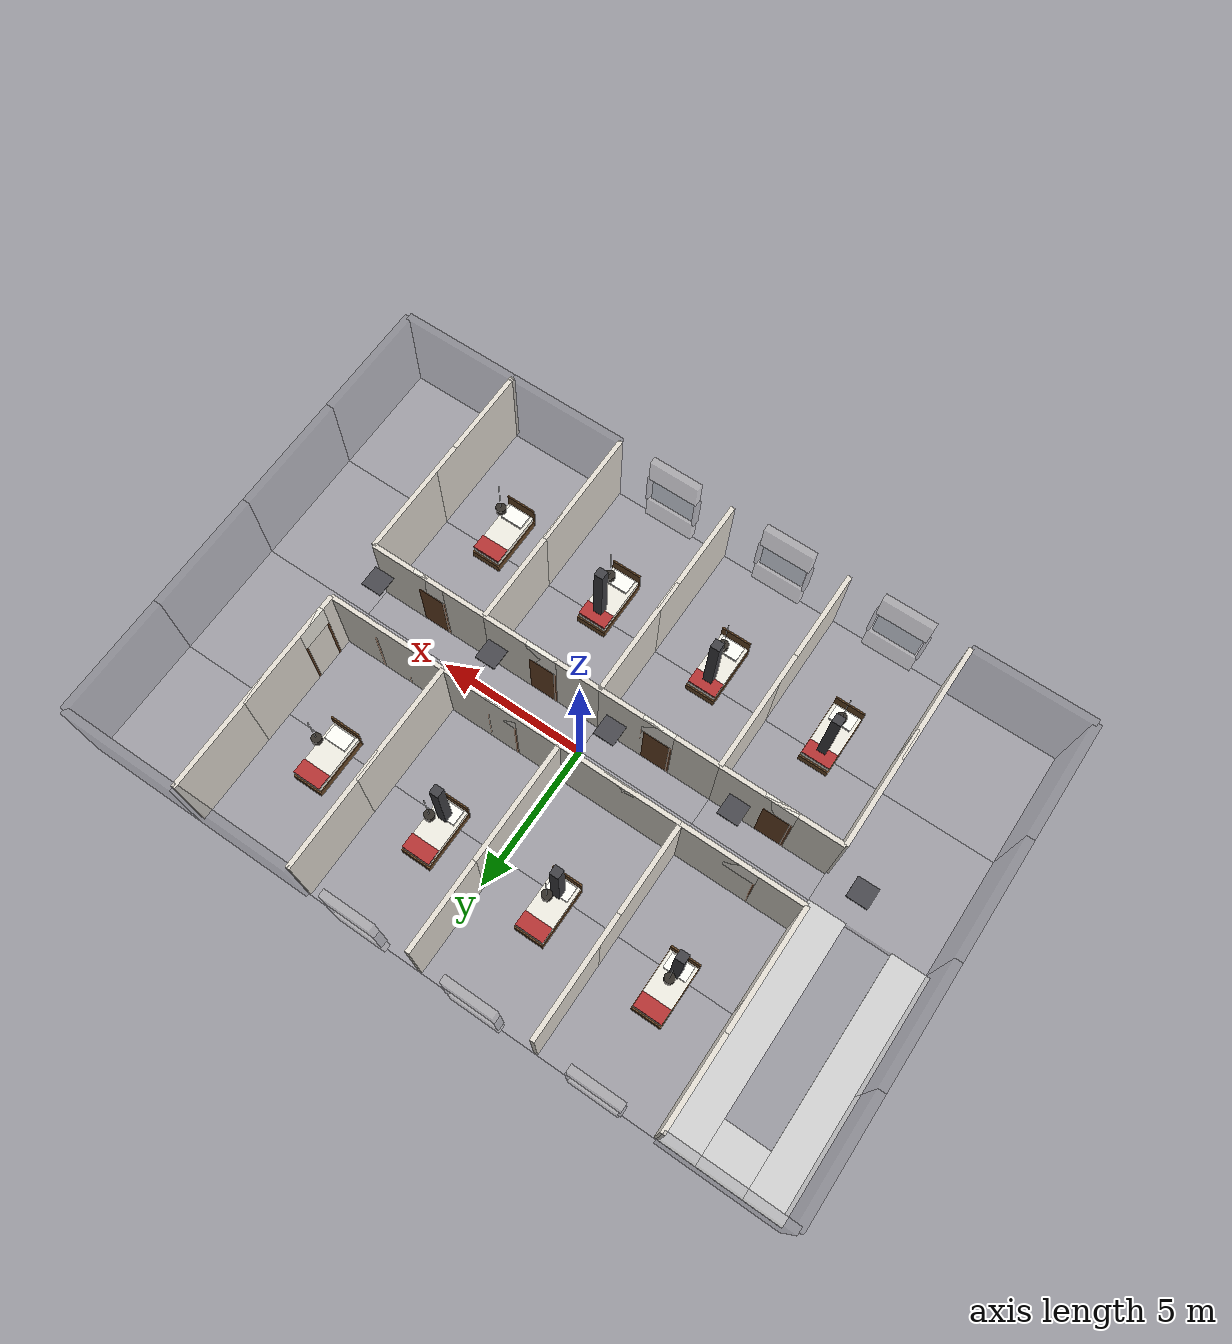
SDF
<?xml version="1.0" ?>
<sdf version="1.6">
  <model name="first_floor">
    <static>true</static>

    <!-- Floor Slabs (grid excluding stair and lift openings) -->
    <!-- Row 1 (y = -6) -->
    <include><name>f1_floor_slab_0_0</name><uri>model://_components/floor_slab_transparent</uri><pose>-10 -6 0 0 0 0</pose></include>
    <include><name>f1_floor_slab_1_0</name><uri>model://_components/floor_slab_transparent</uri><pose>-6 -6 0 0 0 0</pose></include>
    <include><name>f1_floor_slab_2_0</name><uri>model://_components/floor_slab_transparent</uri><pose>-2 -6 0 0 0 0</pose></include>
    <include><name>f1_floor_slab_3_0</name><uri>model://_components/floor_slab_transparent</uri><pose>2 -6 0 0 0 0</pose></include>
    <include><name>f1_floor_slab_4_0</name><uri>model://_components/floor_slab_transparent</uri><pose>6 -6 0 0 0 0</pose></include>
    <include><name>f1_floor_slab_5_0</name><uri>model://_components/floor_slab_transparent</uri><pose>10 -6 0 0 0 0</pose></include>

    <!-- Row 2 (y = -2) -->
    <include><name>f1_floor_slab_0_1</name><uri>model://_components/floor_slab_transparent</uri><pose>-10 -2 0 0 0 0</pose></include>
    <include><name>f1_floor_slab_1_1</name><uri>model://_components/floor_slab_transparent</uri><pose>-6 -2 0 0 0 0</pose></include>
    <include><name>f1_floor_slab_2_1</name><uri>model://_components/floor_slab_transparent</uri><pose>-2 -2 0 0 0 0</pose></include>
    <include><name>f1_floor_slab_3_1</name><uri>model://_components/floor_slab_transparent</uri><pose>2 -2 0 0 0 0</pose></include>
    <include><name>f1_floor_slab_4_1</name><uri>model://_components/floor_slab_transparent</uri><pose>6 -2 0 0 0 0</pose></include>
    <include><name>f1_floor_slab_5_1</name><uri>model://_components/floor_slab_transparent</uri><pose>10 -2 0 0 0 0</pose></include>

    <!-- Row 3 (y = 2) - Omit x = -10 (stair opening) -->
    <include><name>f1_floor_slab_1_2</name><uri>model://_components/floor_slab_transparent</uri><pose>-6 2 0 0 0 0</pose></include>
    <include><name>f1_floor_slab_2_2</name><uri>model://_components/floor_slab_transparent</uri><pose>-2 2 0 0 0 0</pose></include>
    <include><name>f1_floor_slab_3_2</name><uri>model://_components/floor_slab_transparent</uri><pose>2 2 0 0 0 0</pose></include>
    <include><name>f1_floor_slab_4_2</name><uri>model://_components/floor_slab_transparent</uri><pose>6 2 0 0 0 0</pose></include>
    <include><name>f1_floor_slab_5_2</name><uri>model://_components/floor_slab_transparent</uri><pose>10 2 0 0 0 0</pose></include>

    <!-- Row 4 (y = 6) - Omit x = -10 (lift opening) -->
    <include><name>f1_floor_slab_1_3</name><uri>model://_components/floor_slab_transparent</uri><pose>-6 6 0 0 0 0</pose></include>
    <include><name>f1_floor_slab_2_3</name><uri>model://_components/floor_slab_transparent</uri><pose>-2 6 0 0 0 0</pose></include>
    <include><name>f1_floor_slab_3_3</name><uri>model://_components/floor_slab_transparent</uri><pose>2 6 0 0 0 0</pose></include>
    <include><name>f1_floor_slab_4_3</name><uri>model://_components/floor_slab_transparent</uri><pose>6 6 0 0 0 0</pose></include>
    <include><name>f1_floor_slab_5_3</name><uri>model://_components/floor_slab_transparent</uri><pose>10 6 0 0 0 0</pose></include>

    <!-- Walking areas around the stair/lift openings -->
    <link name="floor_fillers">
      <pose>0 0 0 0 0 0</pose>
      <!-- Left walking strip (x = -12 to -10.75, y = 0 to 8) -->
      <collision name="strip_l_collision">
        <pose>-11.375 4.0 0.025 0 0 0</pose>
        <geometry><box><size>1.25 8.0 0.05</size></box></geometry>
      </collision>
      <visual name="strip_l_visual">
        <pose>-11.375 4.0 0.025 0 0 0</pose>
        <geometry><box><size>1.25 8.0 0.05</size></box></geometry>
        <material><ambient>0.8 0.8 0.8 1</ambient><diffuse>0.8 0.8 0.8 1</diffuse></material>
      </visual>
      <!-- Right walking strip (x = -9.25 to -8.0, y = 0 to 8) -->
      <collision name="strip_r_collision">
        <pose>-8.625 4.0 0.025 0 0 0</pose>
        <geometry><box><size>1.25 8.0 0.05</size></box></geometry>
      </collision>
      <visual name="strip_r_visual">
        <pose>-8.625 4.0 0.025 0 0 0</pose>
        <geometry><box><size>1.25 8.0 0.05</size></box></geometry>
        <material><ambient>0.8 0.8 0.8 1</ambient><diffuse>0.8 0.8 0.8 1</diffuse></material>
      </visual>
      <!-- North walking strip (above lift shaft, y = 6.5 to 8.0, x = -11.0 to -9.0) -->
      <collision name="strip_n_collision">
        <pose>-10.0 7.25 0.025 0 0 0</pose>
        <geometry><box><size>1.5 1.5 0.05</size></box></geometry>
      </collision>
      <visual name="strip_n_visual">
        <pose>-10.0 7.25 0.025 0 0 0</pose>
        <geometry><box><size>1.5 1.5 0.05</size></box></geometry>
        <material><ambient>0.8 0.8 0.8 1</ambient><diffuse>0.8 0.8 0.8 1</diffuse></material>
      </visual>
    </link>

    <!-- Exterior Walls (First Floor) -->
    <!-- South Facade (y = -8) -->
    <include><name>f1_ext_wall_s0</name><uri>model://_components/wall_exterior</uri><pose>-10 -8 0 0 0 0</pose></include>
    <include><name>f1_ext_wall_s1</name><uri>model://_components/window_standard</uri><pose>-6 -8 0 0 0 0</pose></include>
    <include><name>f1_ext_wall_s2</name><uri>model://_components/window_standard</uri><pose>-2 -8 0 0 0 0</pose></include>
    <include><name>f1_ext_wall_s3</name><uri>model://_components/window_standard</uri><pose>2 -8 0 0 0 0</pose></include>
    <include><name>f1_ext_wall_s4</name><uri>model://_components/wall_exterior</uri><pose>6 -8 0 0 0 0</pose></include>
    <include><name>f1_ext_wall_s5</name><uri>model://_components/wall_exterior</uri><pose>10 -8 0 0 0 0</pose></include>

    <!-- North Facade (y = 8) -->
    <include><name>f1_ext_wall_n0</name><uri>model://_components/wall_exterior</uri><pose>-10 8 0 0 0 3.14159</pose></include>
    <include><name>f1_ext_wall_n1</name><uri>model://_components/window_standard</uri><pose>-6 8 0 0 0 3.14159</pose></include>
    <include><name>f1_ext_wall_n2</name><uri>model://_components/window_standard</uri><pose>-2 8 0 0 0 3.14159</pose></include>
    <include><name>f1_ext_wall_n3</name><uri>model://_components/window_standard</uri><pose>2 8 0 0 0 3.14159</pose></include>
    <include><name>f1_ext_wall_n4</name><uri>model://_components/wall_exterior</uri><pose>6 8 0 0 0 3.14159</pose></include>
    <include><name>f1_ext_wall_n5</name><uri>model://_components/wall_exterior</uri><pose>10 8 0 0 0 3.14159</pose></include>

    <!-- West Facade (x = -12) -->
    <include><name>f1_ext_wall_w0</name><uri>model://_components/wall_exterior</uri><pose>-12 -6 0 0 0 1.5708</pose></include>
    <include><name>f1_ext_wall_w1</name><uri>model://_components/wall_exterior</uri><pose>-12 -2 0 0 0 1.5708</pose></include>
    <include><name>f1_ext_wall_w2</name><uri>model://_components/wall_exterior</uri><pose>-12 2 0 0 0 1.5708</pose></include>
    <include><name>f1_ext_wall_w3</name><uri>model://_components/wall_exterior</uri><pose>-12 6 0 0 0 1.5708</pose></include>

    <!-- East Facade (x = 12) -->
    <include><name>f1_ext_wall_e0</name><uri>model://_components/wall_exterior</uri><pose>12 -6 0 0 0 1.5708</pose></include>
    <include><name>f1_ext_wall_e1</name><uri>model://_components/wall_exterior</uri><pose>12 -2 0 0 0 1.5708</pose></include>
    <include><name>f1_ext_wall_e2</name><uri>model://_components/wall_exterior</uri><pose>12 2 0 0 0 1.5708</pose></include>
    <include><name>f1_ext_wall_e3</name><uri>model://_components/wall_exterior</uri><pose>12 6 0 0 0 1.5708</pose></include>

    <!-- Pillars / Columns -->
    <include><name>f1_column_0</name><uri>model://_components/column</uri><pose>-6 -4 0 0 0 0</pose></include>
    <include><name>f1_column_1</name><uri>model://_components/column</uri><pose>-2 -4 0 0 0 0</pose></include>
    <include><name>f1_column_2</name><uri>model://_components/column</uri><pose>2 -4 0 0 0 0</pose></include>
    <include><name>f1_column_3</name><uri>model://_components/column</uri><pose>-6 4 0 0 0 0</pose></include>
    <include><name>f1_column_4</name><uri>model://_components/column</uri><pose>-2 4 0 0 0 0</pose></include>
    <include><name>f1_column_5</name><uri>model://_components/column</uri><pose>2 4 0 0 0 0</pose></include>

    <!-- Cabin Corridor Partition Walls (along y = 1.0m and y = -1.0m) -->
    <!-- North partitions (y = 1.0) -->
    <include><name>corridor_n_wall_1</name><uri>model://_components/wall_segment_4m</uri><pose>-6 1.0 0 0 0 0</pose></include>
    <include><name>corridor_n_wall_2</name><uri>model://_components/wall_segment_4m</uri><pose>-2 1.0 0 0 0 0</pose></include>
    <include><name>corridor_n_wall_3</name><uri>model://_components/wall_segment_4m</uri><pose>2 1.0 0 0 0 0</pose></include>
    <include><name>corridor_n_wall_4</name><uri>model://_components/wall_segment_4m</uri><pose>6 1.0 0 0 0 0</pose></include>

    <!-- South partitions (y = -1.0) -->
    <include><name>corridor_s_wall_1</name><uri>model://_components/wall_segment_4m</uri><pose>-6 -1.0 0 0 0 0</pose></include>
    <include><name>corridor_s_wall_2</name><uri>model://_components/wall_segment_4m</uri><pose>-2 -1.0 0 0 0 0</pose></include>
    <include><name>corridor_s_wall_3</name><uri>model://_components/wall_segment_4m</uri><pose>2 -1.0 0 0 0 0</pose></include>
    <include><name>corridor_s_wall_4</name><uri>model://_components/wall_segment_4m</uri><pose>6 -1.0 0 0 0 0</pose></include>

    <!-- Cabin Entry Doors (pre-opened, leading from corridor into cabins) -->
    <!-- North Cabin Doors -->
    <include><name>cabin_door_1</name><uri>model://_components/door_single</uri><pose>-6 1.0 0 0 0 0</pose></include>
    <include><name>cabin_door_2</name><uri>model://_components/door_single</uri><pose>-2 1.0 0 0 0 0</pose></include>
    <include><name>cabin_door_3</name><uri>model://_components/door_single</uri><pose>2 1.0 0 0 0 0</pose></include>
    <include><name>cabin_door_4</name><uri>model://_components/door_single</uri><pose>6 1.0 0 0 0 0</pose></include>
    <!-- South Cabin Doors -->
    <include><name>cabin_door_5</name><uri>model://_components/door_single</uri><pose>-6 -1.0 0 0 0 3.14159</pose></include>
    <include><name>cabin_door_6</name><uri>model://_components/door_single</uri><pose>-2 -1.0 0 0 0 3.14159</pose></include>
    <include><name>cabin_door_7</name><uri>model://_components/door_single</uri><pose>2 -1.0 0 0 0 3.14159</pose></include>
    <include><name>cabin_door_8</name><uri>model://_components/door_single</uri><pose>6 -1.0 0 0 0 3.14159</pose></include>

    <!-- Cabin Division Walls (North-South partition walls) -->
    <!-- North Division Walls (y = 1.0 to 8.0) -->
    <include><name>div_wall_n0_a</name><uri>model://_components/wall_segment_4m</uri><pose>-8 3.0 0 0 0 1.5708</pose></include>
    <include><name>div_wall_n0_b</name><uri>model://_components/wall_segment_4m</uri><pose>-8 6.0 0 0 0 1.5708</pose></include>

    <include><name>div_wall_n1_a</name><uri>model://_components/wall_segment_4m</uri><pose>-4 3.0 0 0 0 1.5708</pose></include>
    <include><name>div_wall_n1_b</name><uri>model://_components/wall_segment_4m</uri><pose>-4 6.0 0 0 0 1.5708</pose></include>

    <include><name>div_wall_n2_a</name><uri>model://_components/wall_segment_4m</uri><pose>0 3.0 0 0 0 1.5708</pose></include>
    <include><name>div_wall_n2_b</name><uri>model://_components/wall_segment_4m</uri><pose>0 6.0 0 0 0 1.5708</pose></include>

    <include><name>div_wall_n3_a</name><uri>model://_components/wall_segment_4m</uri><pose>4 3.0 0 0 0 1.5708</pose></include>
    <include><name>div_wall_n3_b</name><uri>model://_components/wall_segment_4m</uri><pose>4 6.0 0 0 0 1.5708</pose></include>

    <include><name>div_wall_n4_a</name><uri>model://_components/wall_segment_4m</uri><pose>8 3.0 0 0 0 1.5708</pose></include>
    <include><name>div_wall_n4_b</name><uri>model://_components/wall_segment_4m</uri><pose>8 6.0 0 0 0 1.5708</pose></include>

    <!-- South Division Walls (y = -8.0 to -1.0) -->
    <include><name>div_wall_s0_a</name><uri>model://_components/wall_segment_4m</uri><pose>-8 -3.0 0 0 0 1.5708</pose></include>
    <include><name>div_wall_s0_b</name><uri>model://_components/wall_segment_4m</uri><pose>-8 -6.0 0 0 0 1.5708</pose></include>

    <include><name>div_wall_s1_a</name><uri>model://_components/wall_segment_4m</uri><pose>-4 -3.0 0 0 0 1.5708</pose></include>
    <include><name>div_wall_s1_b</name><uri>model://_components/wall_segment_4m</uri><pose>-4 -6.0 0 0 0 1.5708</pose></include>

    <include><name>div_wall_s2_a</name><uri>model://_components/wall_segment_4m</uri><pose>0 -3.0 0 0 0 1.5708</pose></include>
    <include><name>div_wall_s2_b</name><uri>model://_components/wall_segment_4m</uri><pose>0 -6.0 0 0 0 1.5708</pose></include>

    <include><name>div_wall_s3_a</name><uri>model://_components/wall_segment_4m</uri><pose>4 -3.0 0 0 0 1.5708</pose></include>
    <include><name>div_wall_s3_b</name><uri>model://_components/wall_segment_4m</uri><pose>4 -6.0 0 0 0 1.5708</pose></include>

    <include><name>div_wall_s4_a</name><uri>model://_components/wall_segment_4m</uri><pose>8 -3.0 0 0 0 1.5708</pose></include>
    <include><name>div_wall_s4_b</name><uri>model://_components/wall_segment_4m</uri><pose>8 -6.0 0 0 0 1.5708</pose></include>

    <!-- East-most Storage / Utility Room Doors (at x = 8.0) -->
    <include><name>utility_door_n</name><uri>model://_components/door_single</uri><pose>8 2.0 0 0 0 1.5708</pose></include>
    <include><name>utility_door_s</name><uri>model://_components/door_single</uri><pose>8 -2.0 0 0 0 1.5708</pose></include>

    <!-- Cabin Interior Bedroom Layout (converted from dining to bedrooms) -->
    <!-- Cabin 1 (x = -6, y = 4.5) -->
    <include><name>c1_bed</name><uri>model://_furniture/bed_single</uri><pose>-6 4.5 0 0 0 1.5708</pose></include>

    <!-- Cabin 2 (x = -2, y = 4.5) -->
    <include><name>c2_bed</name><uri>model://_furniture/bed_single</uri><pose>-2 4.5 0 0 0 1.5708</pose></include>

    <!-- Cabin 3 (x = 2, y = 4.5) -->
    <include><name>c3_bed</name><uri>model://_furniture/bed_single</uri><pose>2 4.5 0 0 0 1.5708</pose></include>

    <!-- Cabin 4 (x = 6, y = 4.5) -->
    <include><name>c4_bed</name><uri>model://_furniture/bed_single</uri><pose>6 4.5 0 0 0 1.5708</pose></include>
    <!-- Cabin 5 (x = -6, y = -4.5) -->
    <include><name>c5_bed</name><uri>model://_furniture/bed_single</uri><pose>-6 -4.5 0 0 0 1.5708</pose></include>

    <!-- Cabin 6 (x = -2, y = -4.5) -->
    <include><name>c6_bed</name><uri>model://_furniture/bed_single</uri><pose>-2 -4.5 0 0 0 1.5708</pose></include>

    <!-- Cabin 7 (x = 2, y = -4.5) -->
    <include><name>c7_bed</name><uri>model://_furniture/bed_single</uri><pose>2 -4.5 0 0 0 1.5708</pose></include>

    <!-- Cabin 8 (x = 6, y = -4.5) -->
    <include><name>c8_bed</name><uri>model://_furniture/bed_single</uri><pose>6 -4.5 0 0 0 1.5708</pose></include>

    <!-- Plants removed from first floor (were a navigation/visual disturbance) -->

    <!-- Ceiling Lights (First Floor Ceiling at z = 3.4m) -->
    <!-- Corridor Lighting -->
    <include><name>f1_light_corr_1</name><uri>model://_lighting/ceiling_light_panel</uri><pose>-9 0 3.4 0 0 0</pose></include>
    <include><name>f1_light_corr_2</name><uri>model://_lighting/ceiling_light_panel</uri><pose>-5 0 3.4 0 0 0</pose></include>
    <include><name>f1_light_corr_3</name><uri>model://_lighting/ceiling_light_panel</uri><pose>-1 0 3.4 0 0 0</pose></include>
    <include><name>f1_light_corr_4</name><uri>model://_lighting/ceiling_light_panel</uri><pose>3 0 3.4 0 0 0</pose></include>
    <include><name>f1_light_corr_5</name><uri>model://_lighting/ceiling_light_panel</uri><pose>7 0 3.4 0 0 0</pose></include>

    <!-- Cabin Pendant Lights -->
    <include><name>f1_pendant_light_1</name><uri>model://_lighting/pendant_light</uri><pose>-6 4.5 3.4 0 0 0</pose></include>
    <include><name>f1_pendant_light_2</name><uri>model://_lighting/pendant_light</uri><pose>-2 4.5 3.4 0 0 0</pose></include>
    <include><name>f1_pendant_light_3</name><uri>model://_lighting/pendant_light</uri><pose>2 4.5 3.4 0 0 0</pose></include>
    <include><name>f1_pendant_light_4</name><uri>model://_lighting/pendant_light</uri><pose>6 4.5 3.4 0 0 0</pose></include>
    <include><name>f1_pendant_light_5</name><uri>model://_lighting/pendant_light</uri><pose>-6 -4.5 3.4 0 0 0</pose></include>
    <include><name>f1_pendant_light_6</name><uri>model://_lighting/pendant_light</uri><pose>-2 -4.5 3.4 0 0 0</pose></include>
    <include><name>f1_pendant_light_7</name><uri>model://_lighting/pendant_light</uri><pose>2 -4.5 3.4 0 0 0</pose></include>
    <include><name>f1_pendant_light_8</name><uri>model://_lighting/pendant_light</uri><pose>6 -4.5 3.4 0 0 0</pose></include>

  </model>
</sdf>

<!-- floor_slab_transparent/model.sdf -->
<sdf version="1.6">
  <model name="floor_slab_transparent">
    <static>true</static>
    <link name="floor_link">
      <pose>0 0 -0.15 0 0 0</pose>
      <collision name="floor_col">
        <geometry><box><size>4.0 4.0 0.30</size></box></geometry>
        <surface>
          <friction><ode><mu>0.9</mu><mu2>0.9</mu2></ode></friction>
        </surface>
      </collision>
      <visual name="floor_vis">
        <geometry><box><size>4.0 4.0 0.30</size></box></geometry>
        <material>
          <ambient>0.55 0.55 0.57 1</ambient>
          <diffuse>0.72 0.72 0.74 1</diffuse>
          <specular>0.55 0.55 0.57 1</specular>
          <emissive>0 0 0 1</emissive>
        </material>
        <transparency>0.75</transparency>
      </visual>
    </link>
  </model>
</sdf>

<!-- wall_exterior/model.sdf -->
<sdf version="1.6">
  <model name="wall_exterior">
    <static>true</static>
    <link name="link">
      <pose>0 0 1.5 0 0 0</pose>
      <collision name="collision">
        <geometry>
          <box>
            <size>4.0 0.25 3.0</size>
          </box>
        </geometry>
      </collision>
      <visual name="visual">
        <geometry>
          <box>
            <size>4.0 0.25 3.0</size>
          </box>
        </geometry>
        <material>
          <ambient>0.35 0.35 0.38 1</ambient>
          <diffuse>0.35 0.35 0.38 1</diffuse>
          <specular>0.2 0.2 0.2 1</specular>
        </material>
        <transparency>0.85</transparency>
      </visual>
    </link>
  </model>
</sdf>

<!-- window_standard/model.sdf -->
<sdf version="1.6">
  <model name="window_standard">
    <static>true</static>
    <link name="frame_link">
      <!-- Sill (below glass) fill: z 0.0 -> 0.9 -->
      <collision name="sill_col">
        <pose>0 0 0.45 0 0 0</pose>
        <geometry><box><size>1.7 0.25 0.9</size></box></geometry>
      </collision>
      <visual name="sill_vis">
        <pose>0 0 0.45 0 0 0</pose>
        <geometry><box><size>1.7 0.25 0.9</size></box></geometry>
        <material><ambient>0.85 0.84 0.80 1</ambient><diffuse>0.92 0.91 0.87 1</diffuse><specular>0.05 0.05 0.05 1</specular></material>
        <transparency>0.85</transparency>
      </visual>

      <!-- Header (above glass): z 2.1 -> 3.0 -->
      <collision name="header_col">
        <pose>0 0 2.55 0 0 0</pose>
        <geometry><box><size>1.7 0.25 0.9</size></box></geometry>
      </collision>
      <visual name="header_vis">
        <pose>0 0 2.55 0 0 0</pose>
        <geometry><box><size>1.7 0.25 0.9</size></box></geometry>
        <material><ambient>0.85 0.84 0.80 1</ambient><diffuse>0.92 0.91 0.87 1</diffuse><specular>0.05 0.05 0.05 1</specular></material>
        <transparency>0.85</transparency>
      </visual>

      <!-- Left mullion -->
      <collision name="mull_left_col">
        <pose>-0.85 0 1.5 0 0 0</pose>
        <geometry><box><size>0.10 0.25 1.2</size></box></geometry>
      </collision>
      <visual name="mull_left_vis">
        <pose>-0.85 0 1.5 0 0 0</pose>
        <geometry><box><size>0.10 0.25 1.2</size></box></geometry>
        <material><ambient>0.30 0.30 0.32 1</ambient><diffuse>0.38 0.38 0.40 1</diffuse><specular>0.25 0.25 0.27 1</specular></material>
        <transparency>0.85</transparency>
      </visual>
      <!-- Right mullion -->
      <collision name="mull_right_col">
        <pose>0.85 0 1.5 0 0 0</pose>
        <geometry><box><size>0.10 0.25 1.2</size></box></geometry>
      </collision>
      <visual name="mull_right_vis">
        <pose>0.85 0 1.5 0 0 0</pose>
        <geometry><box><size>0.10 0.25 1.2</size></box></geometry>
        <material><ambient>0.30 0.30 0.32 1</ambient><diffuse>0.38 0.38 0.40 1</diffuse><specular>0.25 0.25 0.27 1</specular></material>
        <transparency>0.85</transparency>
      </visual>
    </link>

    <!-- ===== GLASS (visual only) ===== -->
    <link name="glass_link">
      <pose>0 0 1.5 0 0 0</pose>
      <visual name="glass_vis">
        <geometry><box><size>1.5 0.03 1.2</size></box></geometry>
        <material>
          <!-- Cool tinted transparent glass -->
          <ambient>0.35 0.45 0.50 0.30</ambient>
          <diffuse>0.45 0.55 0.60 0.30</diffuse>
          <specular>0.70 0.70 0.72 0.30</specular>
        </material>
        <transparency>0.7</transparency>
      </visual>
    </link>
  </model>
</sdf>

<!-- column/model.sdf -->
<!--
  column | Module A - Structural Components
  0.30 x 0.30 m footprint, 3.0 m tall. Bottom at z=0. Origin at footprint centre, floor level.
-->
<sdf version="1.6">
  <model name="column">
    <static>true</static>
    <link name="column_link">
      <pose>0 0 1.5 0 0 0</pose>
      <collision name="column_col">
        <geometry><box><size>0.30 0.30 3.0</size></box></geometry>
      </collision>
      <visual name="column_vis">
        <geometry><box><size>0.30 0.30 3.0</size></box></geometry>
        <material>
          <!-- Premium charcoal cladding -->
          <ambient>0.18 0.18 0.20 1</ambient>
          <diffuse>0.25 0.25 0.27 1</diffuse>
          <specular>0.30 0.30 0.32 1</specular>
        </material>
      </visual>
    </link>
  </model>
</sdf>

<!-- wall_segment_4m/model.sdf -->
<sdf version="1.6">
  <model name="wall_segment_4m">
    <static>true</static>
    <link name="link">
      <pose>0 0 1.5 0 0 0</pose>
      <collision name="collision">
        <geometry>
          <box>
            <size>4.0 0.15 3.0</size>
          </box>
        </geometry>
      </collision>
      <visual name="visual">
        <geometry>
          <box>
            <size>4.0 0.15 3.0</size>
          </box>
        </geometry>
        <material>
          <ambient>0.88 0.86 0.82 1</ambient>
          <diffuse>0.88 0.86 0.82 1</diffuse>
          <specular>0.1 0.1 0.1 1</specular>
        </material>
      </visual>
    </link>
  </model>
</sdf>

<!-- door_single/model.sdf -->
<sdf version="1.6">
  <model name="door_single">
    <static>true</static>

    <!-- ===== FRAME ===== -->
    <link name="frame_link">
      <!-- Left jamb -->
      <collision name="jamb_left_col">
        <pose>-0.49 0 1.05 0 0 0</pose>
        <geometry><box><size>0.08 0.15 2.1</size></box></geometry>
      </collision>
      <visual name="jamb_left_vis">
        <pose>-0.49 0 1.05 0 0 0</pose>
        <geometry><box><size>0.08 0.15 2.1</size></box></geometry>
        <material>
          <ambient>0.28 0.18 0.10 1</ambient>
          <diffuse>0.35 0.22 0.12 1</diffuse>
          <specular>0.10 0.08 0.05 1</specular>
        </material>
      </visual>

      <!-- Right jamb -->
      <collision name="jamb_right_col">
        <pose>0.49 0 1.05 0 0 0</pose>
        <geometry><box><size>0.08 0.15 2.1</size></box></geometry>
      </collision>
      <visual name="jamb_right_vis">
        <pose>0.49 0 1.05 0 0 0</pose>
        <geometry><box><size>0.08 0.15 2.1</size></box></geometry>
        <material>
          <ambient>0.28 0.18 0.10 1</ambient>
          <diffuse>0.35 0.22 0.12 1</diffuse>
          <specular>0.10 0.08 0.05 1</specular>
        </material>
      </visual>

      <!-- Head / lintel (spans 0.9 clear + jambs, from z=2.1 up to 3.0 fill) -->
      <collision name="head_col">
        <pose>0 0 2.55 0 0 0</pose>
        <geometry><box><size>1.06 0.15 0.9</size></box></geometry>
      </collision>
      <visual name="head_vis">
        <pose>0 0 2.55 0 0 0</pose>
        <geometry><box><size>1.06 0.15 0.9</size></box></geometry>
        <material>
          <ambient>0.85 0.84 0.80 1</ambient>
          <diffuse>0.92 0.91 0.87 1</diffuse>
          <specular>0.05 0.05 0.05 1</specular>
        </material>
      </visual>
    </link>

    <!-- ===== LEAF (held open flat, no path obstruction) ===== -->
    <link name="leaf_link">
      <!-- Placed flush inside the reveal, offset in Y so it doesn't block the 0.9 m opening -->
      <pose>0 -0.06 1.05 0 0 0</pose>
      <collision name="leaf_col">
        <!-- Thin leaf; kept out of the walkway plane -->
        <geometry><box><size>0.86 0.04 2.05</size></box></geometry>
      </collision>
      <visual name="leaf_vis">
        <geometry><box><size>0.86 0.04 2.05</size></box></geometry>
        <material>
          <ambient>0.32 0.20 0.11 1</ambient>
          <diffuse>0.42 0.27 0.15 1</diffuse>
          <specular>0.15 0.12 0.08 1</specular>
        </material>
      </visual>
    </link>

  </model>
</sdf>

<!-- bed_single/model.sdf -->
<!--
  bed_single | Module B - Furniture
  2.0 (X) x 1.0 (Y) m footprint, headboard at -X end. Origin: floor centre.
  Replaces dining_table_6 + chairs in first-floor cabins (converted to bedrooms).
-->
<sdf version="1.6">
  <model name="bed_single">
    <static>true</static>

    <link name="bed_link">
      <!-- ===== COLLISIONS ===== -->
      <collision name="frame_col">
        <pose>0 0 0.15 0 0 0</pose>
        <geometry><box><size>2.0 1.0 0.3</size></box></geometry>
      </collision>
      <collision name="mattress_col">
        <pose>0 0 0.4 0 0 0</pose>
        <geometry><box><size>1.9 0.95 0.2</size></box></geometry>
      </collision>
      <collision name="headboard_col">
        <pose>-0.975 0 0.45 0 0 0</pose>
        <geometry><box><size>0.05 1.0 0.9</size></box></geometry>
      </collision>

      <!-- ===== VISUALS ===== -->
      <visual name="frame_vis">
        <pose>0 0 0.15 0 0 0</pose>
        <geometry><box><size>2.0 1.0 0.3</size></box></geometry>
        <material>
          <ambient>0.28 0.19 0.11 1</ambient>
          <diffuse>0.42 0.29 0.16 1</diffuse>
          <specular>0.20 0.15 0.10 1</specular>
        </material>
      </visual>
      <visual name="mattress_vis">
        <pose>0 0 0.4 0 0 0</pose>
        <geometry><box><size>1.9 0.95 0.2</size></box></geometry>
        <material>
          <ambient>0.85 0.84 0.80 1</ambient>
          <diffuse>0.92 0.91 0.87 1</diffuse>
          <specular>0.15 0.15 0.15 1</specular>
        </material>
      </visual>
      <visual name="headboard_vis">
        <pose>-0.975 0 0.45 0 0 0</pose>
        <geometry><box><size>0.05 1.0 0.9</size></box></geometry>
        <material>
          <ambient>0.28 0.19 0.11 1</ambient>
          <diffuse>0.42 0.29 0.16 1</diffuse>
          <specular>0.20 0.15 0.10 1</specular>
        </material>
      </visual>
      <!-- Pillow -->
      <visual name="pillow_vis">
        <pose>-0.65 0 0.53 0 0 0</pose>
        <geometry><box><size>0.5 0.75 0.12</size></box></geometry>
        <material>
          <ambient>0.92 0.92 0.90 1</ambient>
          <diffuse>0.97 0.97 0.95 1</diffuse>
          <specular>0.10 0.10 0.10 1</specular>
        </material>
      </visual>
      <!-- Blanket (folded strip at foot end) -->
      <visual name="blanket_vis">
        <pose>0.7 0 0.51 0 0 0</pose>
        <geometry><box><size>0.5 0.95 0.08</size></box></geometry>
        <material>
          <ambient>0.55 0.16 0.16 1</ambient>
          <diffuse>0.70 0.20 0.20 1</diffuse>
          <specular>0.12 0.12 0.12 1</specular>
        </material>
      </visual>
    </link>
  </model>
</sdf>

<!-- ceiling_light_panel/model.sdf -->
<sdf version="1.6">
  <model name="ceiling_light_panel">
    <static>true</static>

    <link name="panel_link">
      <!-- Housing bezel -->
      <visual name="bezel_vis">
        <pose>0 0 0.02 0 0 0</pose>
        <geometry><box><size>0.66 0.66 0.04</size></box></geometry>
        <material><ambient>0.20 0.20 0.22 1</ambient><diffuse>0.28 0.28 0.30 1</diffuse><specular>0.30 0.30 0.32 1</specular></material>
      </visual>
      <!-- Emissive diffuser face (warm white glow) -->
      <visual name="diffuser_vis">
        <pose>0 0 0.0 0 0 0</pose>
        <geometry><box><size>0.60 0.60 0.02</size></box></geometry>
        <material>
          <ambient>0.90 0.86 0.78 1</ambient>
          <diffuse>1.0 0.96 0.88 1</diffuse>
          <emissive>1.0 0.95 0.85 1</emissive>
        </material>
      </visual>

      <!-- Actual light source: warm, soft, downward -->
      <light name="panel_light" type="point">
        <pose>0 0 -0.05 0 0 0</pose>
        <diffuse>0.85 0.82 0.75 1</diffuse>
        <specular>0.25 0.24 0.22 1</specular>
        <attenuation>
          <range>7.0</range>
          <constant>0.4</constant>
          <linear>0.12</linear>
          <quadratic>0.02</quadratic>
        </attenuation>
        <cast_shadows>false</cast_shadows>
      </light>
    </link>
  </model>
</sdf>

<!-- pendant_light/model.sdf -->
<sdf version="1.6">
  <model name="pendant_light">
    <static>true</static>

    <link name="pendant_link">
      <!-- Cord (drops from ceiling z=0 down to shade top ~ -1.3) -->
      <visual name="cord_vis">
        <pose>0 0 -0.65 0 0 0</pose>
        <geometry><cylinder><radius>0.01</radius><length>1.30</length></cylinder></geometry>
        <material><ambient>0.05 0.05 0.05 1</ambient><diffuse>0.08 0.08 0.08 1</diffuse></material>
      </visual>

      <!-- Shade (cone-like: use cylinder for Classic simplicity) -->
      <visual name="shade_vis">
        <pose>0 0 -1.40 0 0 0</pose>
        <geometry><cylinder><radius>0.16</radius><length>0.20</length></cylinder></geometry>
        <material><ambient>0.14 0.13 0.12 1</ambient><diffuse>0.20 0.18 0.16 1</diffuse><specular>0.35 0.33 0.30 1</specular></material>
      </visual>
      <!-- Emissive bulb / underside glow -->
      <visual name="bulb_vis">
        <pose>0 0 -1.52 0 0 0</pose>
        <geometry><sphere><radius>0.06</radius></sphere></geometry>
        <material>
          <ambient>0.95 0.85 0.60 1</ambient>
          <diffuse>1.0 0.92 0.70 1</diffuse>
          <emissive>1.0 0.90 0.65 1</emissive>
        </material>
      </visual>

      <!-- Warm intimate light pooled over the table -->
      <light name="pendant_light_src" type="point">
        <pose>0 0 -1.55 0 0 0</pose>
        <diffuse>0.80 0.72 0.55 1</diffuse>
        <specular>0.20 0.18 0.14 1</specular>
        <attenuation>
          <range>4.0</range>
          <constant>0.5</constant>
          <linear>0.2</linear>
          <quadratic>0.05</quadratic>
        </attenuation>
        <cast_shadows>false</cast_shadows>
      </light>
    </link>
  </model>
</sdf>
